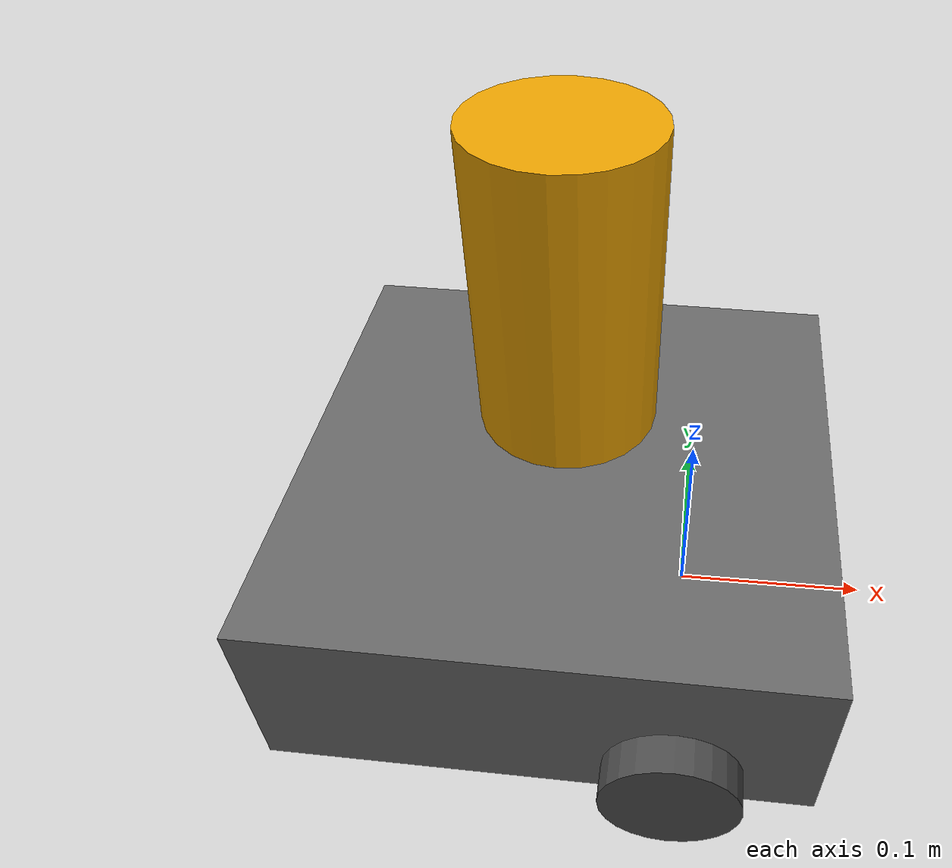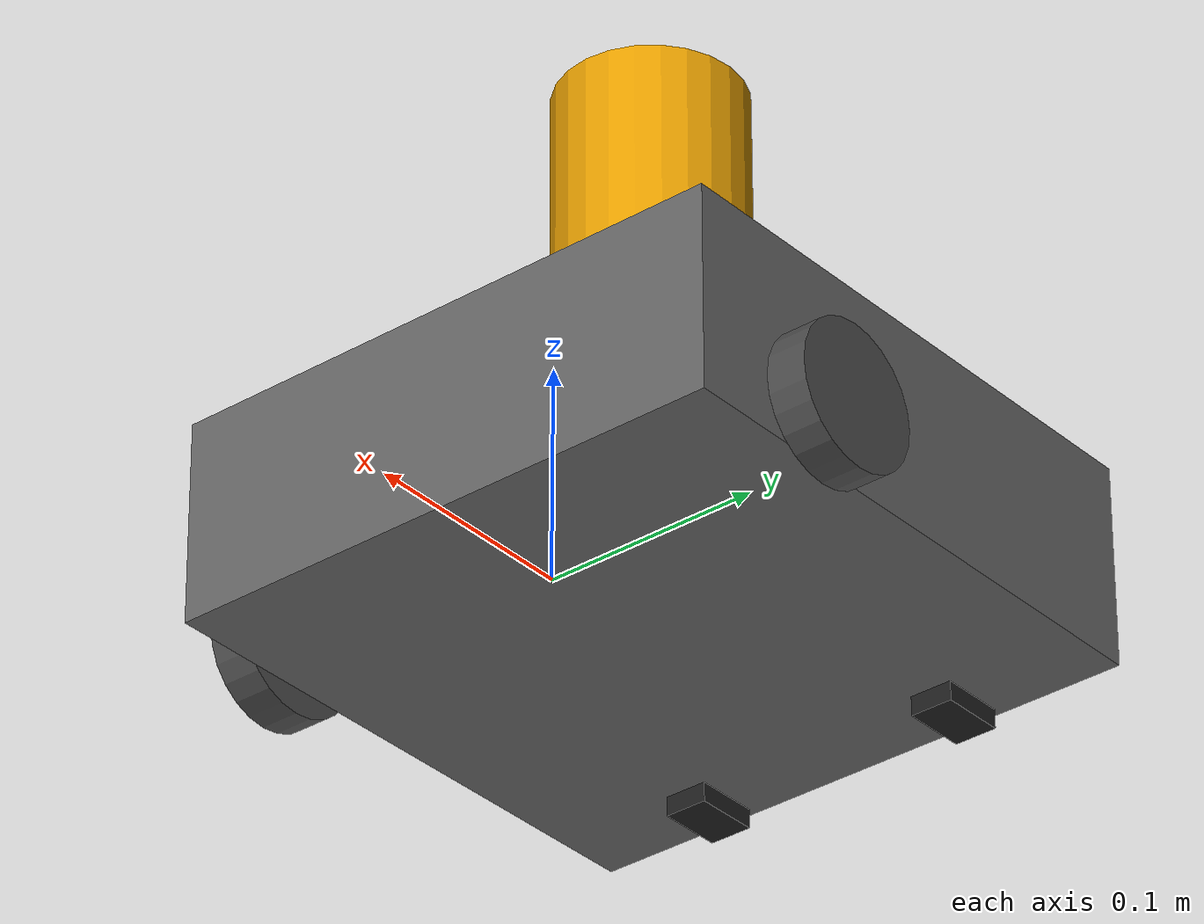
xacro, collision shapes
<?xml version="1.0"?>
<robot name = "turtlebot3_waffle_pi" xmlns:xacro="http://ros.org/wiki/xacro">

  <xacro:arg name="gpu" default="false"/>
  <xacro:property name="gpu" value="$(arg gpu)" />
  <xacro:arg name="organize_cloud" default="false"/>
  <xacro:property name="organize_cloud" value="$(arg organize_cloud)" />

  <xacro:include filename="$(find velodyne_description)/urdf/HDL-32E.urdf.xacro"/>
  <xacro:HDL-32E parent="base_link" name="velodyne" topic="/velodyne_points" organize_cloud="${organize_cloud}" hz="10" samples="220" gpu="${gpu}">
    <origin xyz="-0.064 0 0.122" rpy="0 0 0" />
  </xacro:HDL-32E>

  <!-- Init colour -->
  <material name="black">
      <color rgba="0.0 0.0 0.0 1.0"/>
  </material>

  <material name="dark">
    <color rgba="0.3 0.3 0.3 1.0"/>
  </material>

  <material name="light_black">
    <color rgba="0.4 0.4 0.4 1.0"/>
  </material>

    <link name="base_footprint"/>

    <link name="base_link">
             <visual>
                <origin xyz="-0.064 0 0.0" rpy="0 0 0"/>
                <geometry>
                    <mesh filename="file://$(find tb3dlidar)/model/meshes/bases/waffle_pi_base.stl" scale="0.001 0.001 0.001"/>
                </geometry>
                <material name="light_black"/>
            </visual>

            <collision>
                <origin xyz="-0.064 0 0.047" rpy="0 0 0"/>
                <geometry>
                    <box size="0.266 0.266 0.094"/>
                </geometry>
            </collision>

            <inertial>
                <origin xyz="0 0 0" rpy="0 0 0"/>
                <mass value="1.3729096e+00"/>
                <inertia ixx="8.7002718e-03" ixy="-4.7576583e-05" ixz="1.1160499e-04"
                        iyy="8.6195418e-03" iyz="-3.5422299e-06"
                        izz="1.4612727e-02" />
            </inertial>
    </link>

    <link name="imu_link">

    </link>

    <link name="wheel_left_link">
        <visual>
            <origin xyz="0 0 0" rpy="1.57 0 0"/>
            <geometry>
                <mesh filename="file://$(find tb3dlidar)/model/meshes/wheels/left_tire.stl" scale="0.001 0.001 0.001"/>
            </geometry>
            <material name="dark"/>
        </visual>

        <collision>
            <origin xyz="0 0 0" rpy="0 0 0"/>
            <geometry>
                <cylinder length="0.018" radius="0.033"/>
            </geometry>

        </collision>

        <inertial>
            <origin xyz="0 0 0" />
            <mass value="2.8498940e-02" />
            <inertia ixx="1.1175580e-05" ixy="-4.2369783e-11" ixz="-5.9381719e-09"
                    iyy="1.1192413e-05" iyz="-1.4400107e-11"
                    izz="2.0712558e-05" />
        </inertial>
    </link>

    <link name="wheel_right_link">
         <visual>
            <origin xyz="0 0 0" rpy="1.57 0 0"/>
            <geometry>
                <mesh filename="file://$(find tb3dlidar)/model/meshes/wheels/right_tire.stl" scale="0.001 0.001 0.001"/>
            </geometry>
            <material name="dark"/>
        </visual>

        <collision>
            <origin xyz="0 0 0" rpy="0 0 0"/>
            <geometry>
                <cylinder length="0.018" radius="0.033"/>
            </geometry>

        </collision>

        <inertial>
            <origin xyz="0 0 0" />
            <mass value="2.8498940e-02" />
            <inertia ixx="1.1175580e-05" ixy="-4.2369783e-11" ixz="-5.9381719e-09"
                    iyy="1.1192413e-05" iyz="-1.4400107e-11"
                    izz="2.0712558e-05" />
        </inertial>
    </link>

    <link name="caster_back_left_link">
        <collision>
            <origin xyz="0 0.001 0" rpy="0 0 0"/>
            <geometry>
                <box size="0.030 0.009 0.020"/>
            </geometry>

        </collision>

        <inertial>
        <origin xyz="0 0 0" />
        <mass value="0.005" />
        <inertia ixx="0.001" ixy="0.0" ixz="0.0"
                iyy="0.001" iyz="0.0"
                izz="0.001" />
        </inertial>
    </link>

    <link name="caster_back_right_link">
        <collision>
            <origin xyz="0 0.001 0" rpy="0 0 0"/>
            <geometry>
                <box size="0.030 0.009 0.020"/>
            </geometry>

        </collision>

        <inertial>
        <origin xyz="0 0 0" />
        <mass value="0.005" />
        <inertia ixx="0.001" ixy="0.0" ixz="0.0"
                iyy="0.001" iyz="0.0"
                izz="0.001" />
        </inertial>
    </link>

    <link name="camera_link"/>

    <link name="camera_rgb_frame"/>

    <link name="camera_rgb_optical_frame"/>

    <!-- %%%%%%%%%%%%%%%%%%%%%%%%%%%%%% JOINTS%%%%%%%%%%%%%%%%%%%% -->

    <joint name="base_joint" type="fixed">
        <parent link="base_footprint"/>
        <child link="base_link"/>
        <origin xyz="0 0 0" rpy="0 0.01 0"/>
    </joint>

    <joint name="wheel_left_joint" type="continuous">
        <parent link="base_link"/>
        <child link="wheel_left_link"/>
        <origin xyz="0.0 0.144 0.023" rpy="-1.57 0 0"/>
        <axis xyz="0 0 1"/>
    </joint>

   <joint name="wheel_right_joint" type="continuous">
        <parent link="base_link"/>
        <child link="wheel_right_link"/>
        <origin xyz="0.0 -0.144 0.023" rpy="-1.57 0 0"/>
        <axis xyz="0 0 1"/>
    </joint>

   <joint name='caster_back_right_joint' type='fixed'>
        <parent link="base_link"/>
        <child link="caster_back_right_link"/>
        <origin xyz="-0.177 -0.064 -0.004" rpy="-1.57 0 0"/>

    </joint>

   <joint name='caster_back_left_joint' type='fixed'>
        <parent link="base_link"/>
        <child link="caster_back_left_link"/>
        <origin xyz="-0.177 0.064 -0.004" rpy="-1.57 0 0"/>
    </joint>

    <joint name="imu_joint" type="fixed">
        <parent link="base_link"/>
        <child link="imu_link"/>
        <origin xyz="-0.032 0 0.068 " rpy="0 0 0"/>
        <axis xyz="0 0 1"/>
    </joint>

    <joint name="camera_joint" type="fixed">
        <parent link="base_link"/>
        <child link="camera_link"/>
        <origin xyz="0.073 -0.011 0.084" rpy="0 0 0"/>
    </joint>

    <joint name="camera_rgb_joint" type="fixed">
        <parent link="camera_link"/>
        <child link="camera_rgb_frame"/>
        <origin xyz="0.003 0.011 0.009" rpy="0 0 0"/>
    </joint>

  <joint name="camera_rgb_optical_joint" type="fixed">
    <origin xyz="0 0 0" rpy="-1.57 0 0"/>
    <parent link="camera_rgb_frame"/>
    <child link="camera_rgb_optical_frame"/>
  </joint>

<!-- %%%%%%%%%%%%%%%%%%%%%%%%%%%% gazebo tag %%%%%%%%%%%%%%%%%%%%%%%%%%%% -->

    <!-- Publish odom and base_footprint in tf topic  -->
    <gazebo>
        <plugin name="turtlebot3_diff_drive" filename="libgazebo_ros_diff_drive.so">

            <ros>
            </ros>

            <update_rate>30</update_rate>

            <!-- wheels -->
            <left_joint>wheel_left_joint</left_joint>
            <right_joint>wheel_right_joint</right_joint>

            <!-- kinematics -->
            <wheel_separation>0.287</wheel_separation>
            <wheel_diameter>0.066</wheel_diameter>

            <!-- limits -->
            <max_wheel_torque>10</max_wheel_torque>
            <max_wheel_acceleration>1.0</max_wheel_acceleration>

            <command_topic>cmd_vel</command_topic>

            <!-- output -->
            <publish_odom>true</publish_odom>
            <publish_odom_tf>true</publish_odom_tf>
            <publish_wheel_tf>false</publish_wheel_tf>

            <odometry_topic>odom</odometry_topic>
            <odometry_frame>odom</odometry_frame>
            <robot_base_frame>base_footprint</robot_base_frame>

        </plugin>
    </gazebo>

    <!-- To publish other frames besides odom and base_footprint to publish their tf transforms in the tf topic  -->
    <!-- I guess this is new in ros 2 and in ros 1 we didn't have to specify this explicitly  -->
    <gazebo>
        <plugin name="turtlebot3_joint_state" filename="libgazebo_ros_joint_state_publisher.so">
            <ros>
                <remapping>~/out:=joint_states</remapping>
            </ros>
            <update_rate>30</update_rate>
            <joint_name>wheel_left_joint</joint_name>
            <joint_name>wheel_right_joint</joint_name>
        </plugin>
    </gazebo>

  <gazebo reference="base_link">
    <material>Gazebo/DarkGrey</material>
  </gazebo>

  <gazebo reference="wheel_left_link">
    <mu1>0.1</mu1>
    <mu2>0.1</mu2>
    <kp>500000.0</kp>
    <kd>10.0</kd>
    <minDepth>0.001</minDepth>
    <maxVel>0.1</maxVel>
    <fdir1>1 0 0</fdir1>
    <material>Gazebo/FlatBlack</material>
  </gazebo>

  <gazebo reference="wheel_right_link">
    <mu1>0.1</mu1>
    <mu2>0.1</mu2>
    <kp>500000.0</kp>
    <kd>10.0</kd>
    <minDepth>0.001</minDepth>
    <maxVel>0.1</maxVel>
    <fdir1>1 0 0</fdir1>
    <material>Gazebo/FlatBlack</material>
  </gazebo>

  <gazebo reference="caster_back_right_link">
    <mu1>0.1</mu1>
    <mu2>0.1</mu2>
    <kp>1000000.0</kp>
    <kd>100.0</kd>
    <minDepth>0.001</minDepth>
    <maxVel>1.0</maxVel>
    <material>Gazebo/FlatBlack</material>
  </gazebo>

  <gazebo reference="caster_back_left_link">
    <mu1>0.1</mu1>
    <mu2>0.1</mu2>
    <kp>1000000.0</kp>
    <kd>100.0</kd>
    <minDepth>0.001</minDepth>
    <maxVel>1.0</maxVel>
    <material>Gazebo/FlatBlack</material>
  </gazebo>

    <!-- in the scan topic -->

    <!-- linear acceleration on imu topic -->
    <gazebo reference="imu_link">
        <sensor name="tb3_imu" type="imu">
                    <always_on>true</always_on>
                    <update_rate>200</update_rate>
                    <imu>
                    <angular_velocity>
                        <x>
                        <noise type="gaussian">
                            <mean>0.0</mean>
                            <stddev>2e-4</stddev>
                        </noise>
                        </x>
                        <y>
                        <noise type="gaussian">
                            <mean>0.0</mean>
                            <stddev>2e-4</stddev>
                        </noise>
                        </y>
                        <z>
                        <noise type="gaussian">
                            <mean>0.0</mean>
                            <stddev>2e-4</stddev>
                        </noise>
                        </z>
                    </angular_velocity>
                    <linear_acceleration>
                        <x>
                        <noise type="gaussian">
                            <mean>0.0</mean>
                            <stddev>1.7e-2</stddev>
                        </noise>
                        </x>
                        <y>
                        <noise type="gaussian">
                            <mean>0.0</mean>
                            <stddev>1.7e-2</stddev>
                        </noise>
                        </y>
                        <z>
                        <noise type="gaussian">
                            <mean>0.0</mean>
                            <stddev>1.7e-2</stddev>
                        </noise>
                        </z>
                    </linear_acceleration>
                    </imu>
                    <plugin name="turtlebot3_imu" filename="libgazebo_ros_imu_sensor.so">
                    <ros>
                        <remapping>~/out:=imu</remapping>
                    </ros>
                    </plugin>
            </sensor>
    </gazebo>

    <gazebo reference="camera_rgb_optical_frame">
      <inertial>
        <pose>0.076 0.0 0.093 0 0 0</pose>
        <inertia>
          <ixx>0.001</ixx>
          <ixy>0.000</ixy>
          <ixz>0.000</ixz>
          <iyy>0.001</iyy>
          <iyz>0.000</iyz>
          <izz>0.001</izz>
        </inertia>
        <mass>0.035</mass>
      </inertial>

      <pose>0.076 0.0 0.093 0 0 0</pose>
        <sensor name="camera" type="camera">
                <always_on>true</always_on>
                <visualize>true</visualize>
                <update_rate>30</update_rate>
                <camera name="picam">
                <horizontal_fov>1.085595</horizontal_fov>
                <image>
                    <width>640</width>
                    <height>480</height>
                    <format>R8G8B8</format>
                </image>
                <clip>
                    <near>0.03</near>
                    <far>100</far>
                </clip>
                <noise>
                    <type>gaussian</type>
                    <mean>0.0</mean>
                    <stddev>0.007</stddev>
                </noise>
                </camera>
                <plugin name="camera_driver" filename="libgazebo_ros_camera.so">
                    <ros>
                    </ros>
                </plugin>
            </sensor>
    </gazebo>

</robot>

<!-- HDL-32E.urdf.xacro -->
<robot xmlns:xacro="http://www.ros.org/wiki/xacro" name="HDL-32E">
  <xacro:property name="M_PI" value="3.1415926535897931" />
  <xacro:macro name="HDL-32E" params="*origin parent:=base_link name:=velodyne tf_prefix:='' topic:=/velodyne_points organize_cloud:=false hz:=10 lasers:=32 samples:=2187 collision_range:=0.3 min_range:=0.9 max_range:=130.0 noise:=0.008 min_angle:=-${M_PI} max_angle:=${M_PI} gpu:=false">

    <joint name="${name}_base_mount_joint" type="fixed">
      <xacro:insert_block name="origin" />
      <parent link="${parent}"/>
      <child link="${name}_base_link"/>
    </joint>

    <link name="${name}_base_link">
      <inertial>
        <mass value="1.0"/>
        <origin xyz="0 0 0.07212"/>
        <inertia ixx="${(1.0 * (3.0*0.04267*0.04267 + 0.14424*0.14424)) / 12.0}" ixy="0" ixz="0"
          iyy="${(1.0 * (3.0*0.04267*0.04267 + 0.14424*0.14424)) / 12.0}" iyz="0"
          izz="${0.5 * 1.0 * (0.04267*0.04267)}"/>
      </inertial>
      <visual>
        <geometry>
          <mesh filename="package://velodyne_description/meshes/HDL32E_base.dae" />
        </geometry>
      </visual>
      <collision>
        <origin rpy="0 0 0" xyz="0 0 0.07212"/>
        <geometry>
          <cylinder radius="0.04267" length="0.14424"/>
        </geometry>
      </collision>
    </link>

    <joint name="${name}_base_scan_joint" type="fixed" >
      <origin xyz="0 0 0.09081" rpy="0 0 0" />
      <parent link="${name}_base_link" />
      <child link="${name}"/>
    </joint>

    <link name="${name}">
      <inertial>
        <mass value="0.01"/>
        <origin xyz="0 0 0"/>
        <inertia ixx="1e-7" ixy="0" ixz="0" iyy="1e-7" iyz="0" izz="1e-7"/>
      </inertial>
      <visual>
        <origin xyz="0 0 -0.09081" rpy="0 0 0" />
        <geometry>
          <mesh filename="package://velodyne_description/meshes/HDL32E_scan.dae" />
        </geometry>
      </visual>
      <collision>
        <geometry>
          <sphere radius="0"/>
        </geometry>
      </collision>
    </link>

    <!-- Gazebo requires the velodyne_gazebo_plugins package -->
    <gazebo reference="${name}">
      <xacro:if value="${gpu}">
        <sensor type="gpu_ray" name="${name}-HDL32E">
          <pose>0 0 0 0 0 0</pose>
          <visualize>false</visualize>
          <update_rate>${hz}</update_rate>
          <ray>
            <scan>
              <horizontal>
                <samples>${samples}</samples>
                <resolution>1</resolution>
                <min_angle>${min_angle}</min_angle>
                <max_angle>${max_angle}</max_angle>
              </horizontal>
              <vertical>
                <samples>${lasers}</samples>
                <resolution>1</resolution>
                <min_angle>-${5.0*M_PI/180.0}</min_angle>
                <max_angle> ${85.0*M_PI/180.0}</max_angle>
              </vertical>
            </scan>
            <range>
              <min>${collision_range}</min>
              <max>${max_range+1}</max>
              <resolution>0.001</resolution>
            </range>
            <noise>
              <type>gaussian</type>
              <mean>0.0</mean>
              <stddev>0.0</stddev>
            </noise>
          </ray>
          <plugin name="gazebo_ros_laser_controller" filename="libgazebo_ros_velodyne_laser.so">
            <ros>
              <namespace>/${name}</namespace>
              <remapping>~/out:=${topic}</remapping>
            </ros>
            <tf_prefix>${tf_prefix}</tf_prefix>
            <frame_name>${name}</frame_name>
            <organize_cloud>${organize_cloud}</organize_cloud>
            <min_range>${min_range}</min_range>
            <max_range>${max_range}</max_range>
            <gaussian_noise>${noise}</gaussian_noise>
          </plugin>
        </sensor>
      </xacro:if>
      <xacro:unless value="${gpu}">
        <sensor type="ray" name="${name}-HDL32E">
          <pose>0 0 0 0 0 0</pose>
          <visualize>false</visualize>
          <update_rate>${hz}</update_rate>
          <ray>
            <scan>
              <horizontal>
                <samples>${samples}</samples>
                <resolution>1</resolution>
                <min_angle>${min_angle}</min_angle>
                <max_angle>${max_angle}</max_angle>
              </horizontal>
              <vertical>
                <samples>${lasers}</samples>
                <resolution>1</resolution>
                <min_angle>-${5.0*M_PI/180.0}</min_angle>
                <max_angle> ${85.0*M_PI/180.0}</max_angle>
              </vertical>
            </scan>
            <range>
              <min>${collision_range}</min>
              <max>${max_range+1}</max>
              <resolution>0.001</resolution>
            </range>
            <noise>
              <type>gaussian</type>
              <mean>0.0</mean>
              <stddev>0.0</stddev>
            </noise>
          </ray>
          <plugin name="gazebo_ros_laser_controller" filename="libgazebo_ros_velodyne_laser.so">
            <ros>
              <namespace>/${name}</namespace>
              <remapping>~/out:=${topic}</remapping>
            </ros>
            <tf_prefix>${tf_prefix}</tf_prefix>
            <frame_name>${name}</frame_name>
            <organize_cloud>${organize_cloud}</organize_cloud>
            <min_range>${min_range}</min_range>
            <max_range>${max_range}</max_range>
            <gaussian_noise>${noise}</gaussian_noise>
          </plugin>
        </sensor>
      </xacro:unless>
    </gazebo>

  </xacro:macro>
</robot>
